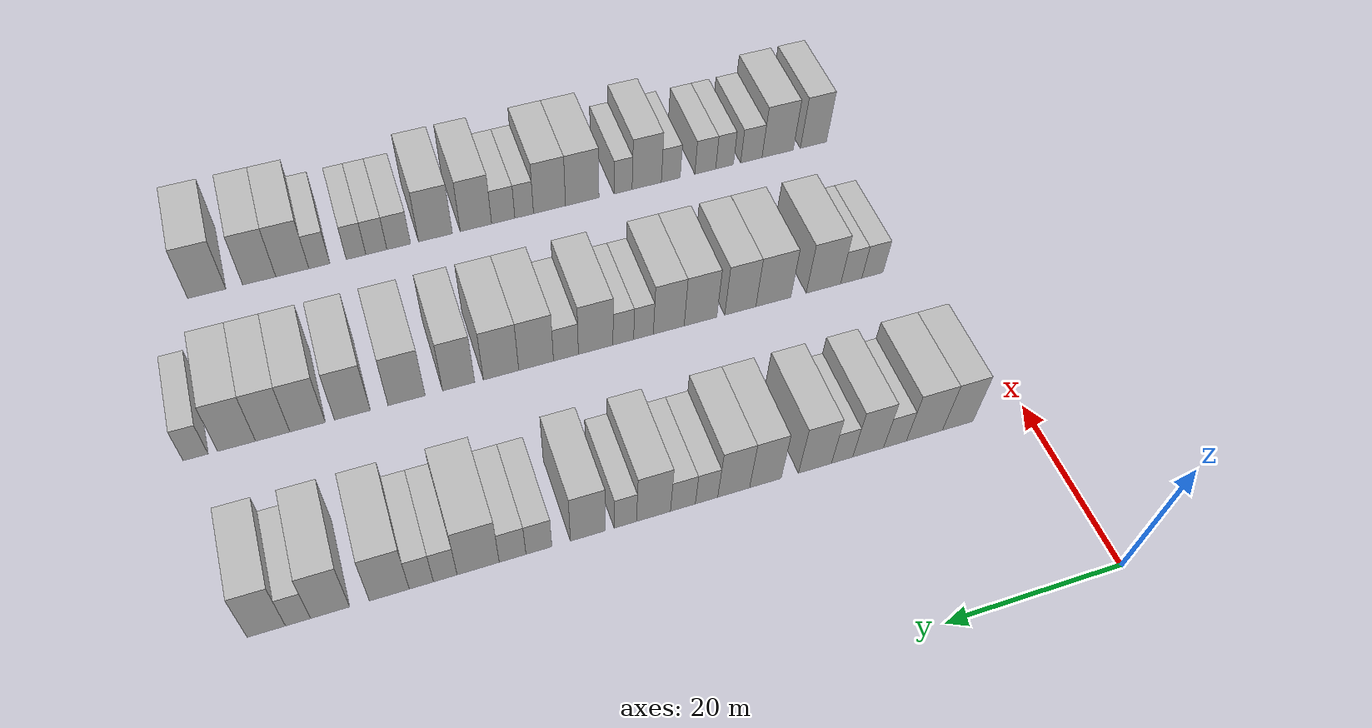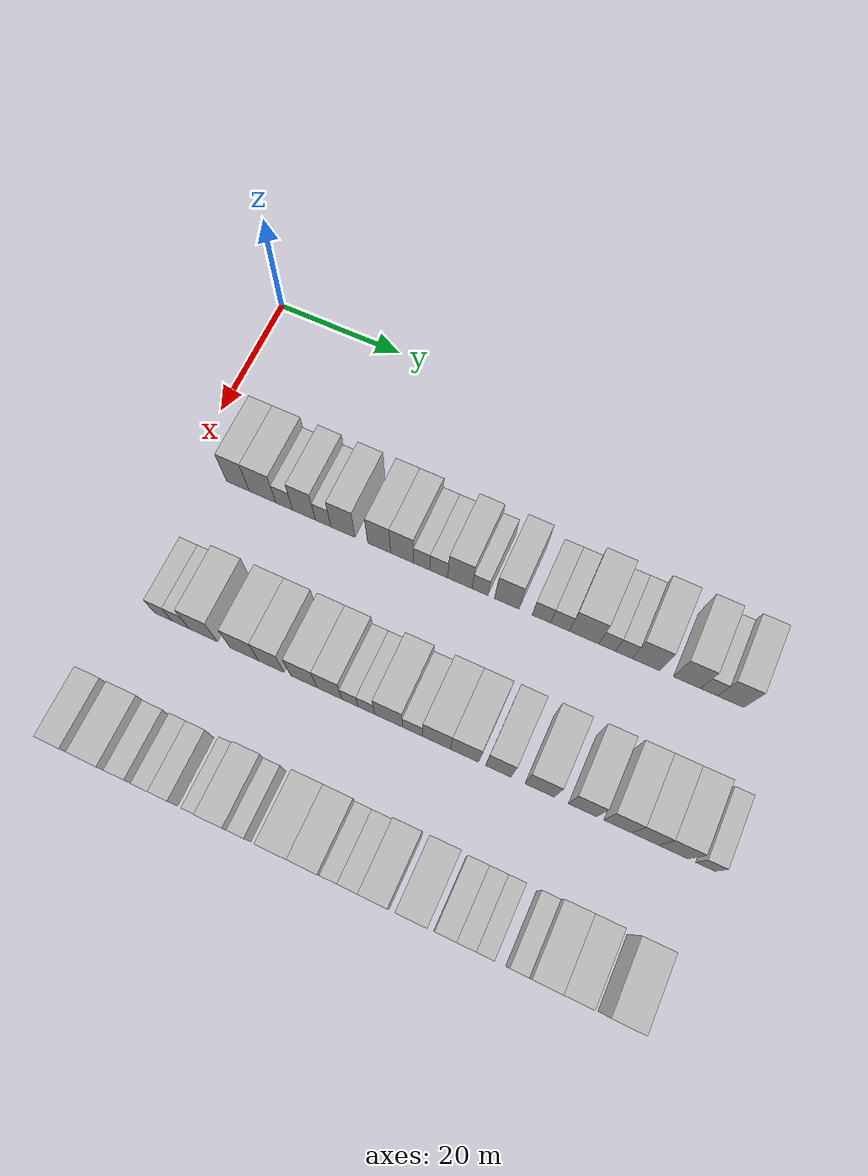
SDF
<sdf version="1.6">
 <world name="default">
  <model name="building_58">
   <static>1</static>
   <pose>25.0000 8.1320 0 0.000000 0.000000 0.000000</pose>
   <link name="link">
    <pose>0 0 4.50 0 0 0</pose>
    <collision name="collision"><geometry><box><size>10.0000 3.7387 9.0000</size></box></geometry></collision>
    <visual name="visual">
     <cast_shadows>0</cast_shadows>
     <geometry><box><size>10.0000 3.7387 9.0000</size></box></geometry>
     <material>
      <script>
       <uri>model://HANNAS_wall/materials/scripts</uri>
       <uri>model://HANNAS_wall/materials/textures</uri>
       <name>vrc/HANNAS_wall</name>
      </script>
     </material>
    </visual>
   </link>
  </model>
  <model name="building_59">
   <static>1</static>
   <pose>25.0000 12.1919 0 0.000000 0.000000 0.000000</pose>
   <link name="link">
    <pose>0 0 4.50 0 0 0</pose>
    <collision name="collision"><geometry><box><size>10.0000 4.3811 9.0000</size></box></geometry></collision>
    <visual name="visual">
     <cast_shadows>0</cast_shadows>
     <geometry><box><size>10.0000 4.3811 9.0000</size></box></geometry>
     <material>
      <script>
       <uri>model://HANNAS_wall/materials/scripts</uri>
       <uri>model://HANNAS_wall/materials/textures</uri>
       <name>vrc/HANNAS_wall</name>
      </script>
     </material>
    </visual>
   </link>
  </model>
  <model name="building_60">
   <static>1</static>
   <pose>25.0000 15.7522 0 0.000000 0.000000 0.000000</pose>
   <link name="link">
    <pose>0 0 3.00 0 0 0</pose>
    <collision name="collision"><geometry><box><size>10.0000 2.7394 6.0000</size></box></geometry></collision>
    <visual name="visual">
     <cast_shadows>0</cast_shadows>
     <geometry><box><size>10.0000 2.7394 6.0000</size></box></geometry>
     <material>
      <script>
       <uri>model://HANNAS_wall/materials/scripts</uri>
       <uri>model://HANNAS_wall/materials/textures</uri>
       <name>vrc/HANNAS_wall</name>
      </script>
     </material>
    </visual>
   </link>
  </model>
  <model name="building_61">
   <static>1</static>
   <pose>25.0000 18.9589 0 0.000000 0.000000 0.000000</pose>
   <link name="link">
    <pose>0 0 4.50 0 0 0</pose>
    <collision name="collision"><geometry><box><size>10.0000 3.6740 9.0000</size></box></geometry></collision>
    <visual name="visual">
     <cast_shadows>0</cast_shadows>
     <geometry><box><size>10.0000 3.6740 9.0000</size></box></geometry>
     <material>
      <script>
       <uri>model://HANNAS_wall/materials/scripts</uri>
       <uri>model://HANNAS_wall/materials/textures</uri>
       <name>vrc/HANNAS_wall</name>
      </script>
     </material>
    </visual>
   </link>
  </model>
  <model name="building_62">
   <static>1</static>
   <pose>25.0000 22.0451 0 0.000000 0.000000 0.000000</pose>
   <link name="link">
    <pose>0 0 3.00 0 0 0</pose>
    <collision name="collision"><geometry><box><size>10.0000 2.4986 6.0000</size></box></geometry></collision>
    <visual name="visual">
     <cast_shadows>0</cast_shadows>
     <geometry><box><size>10.0000 2.4986 6.0000</size></box></geometry>
     <material>
      <script>
       <uri>model://HANNAS_wall/materials/scripts</uri>
       <uri>model://HANNAS_wall/materials/textures</uri>
       <name>vrc/HANNAS_wall</name>
      </script>
     </material>
    </visual>
   </link>
  </model>
  <model name="building_63">
   <static>1</static>
   <pose>25.0000 25.2321 0 0.000000 0.000000 0.000000</pose>
   <link name="link">
    <pose>0 0 4.50 0 0 0</pose>
    <collision name="collision"><geometry><box><size>10.0000 3.8754 9.0000</size></box></geometry></collision>
    <visual name="visual">
     <cast_shadows>0</cast_shadows>
     <geometry><box><size>10.0000 3.8754 9.0000</size></box></geometry>
     <material>
      <script>
       <uri>model://HANNAS_wall/materials/scripts</uri>
       <uri>model://HANNAS_wall/materials/textures</uri>
       <name>vrc/HANNAS_wall</name>
      </script>
     </material>
    </visual>
   </link>
  </model>
  <model name="building_64">
   <static>1</static>
   <pose>25.0000 30.9867 0 0.000000 0.000000 0.000000</pose>
   <link name="link">
    <pose>0 0 4.50 0 0 0</pose>
    <collision name="collision"><geometry><box><size>10.0000 3.6338 9.0000</size></box></geometry></collision>
    <visual name="visual">
     <cast_shadows>0</cast_shadows>
     <geometry><box><size>10.0000 3.6338 9.0000</size></box></geometry>
     <material>
      <script>
       <uri>model://HANNAS_wall/materials/scripts</uri>
       <uri>model://HANNAS_wall/materials/textures</uri>
       <name>vrc/HANNAS_wall</name>
      </script>
     </material>
    </visual>
   </link>
  </model>
  <model name="building_65">
   <static>1</static>
   <pose>25.0000 34.6218 0 0.000000 0.000000 0.000000</pose>
   <link name="link">
    <pose>0 0 4.50 0 0 0</pose>
    <collision name="collision"><geometry><box><size>10.0000 3.6363 9.0000</size></box></geometry></collision>
    <visual name="visual">
     <cast_shadows>0</cast_shadows>
     <geometry><box><size>10.0000 3.6363 9.0000</size></box></geometry>
     <material>
      <script>
       <uri>model://HANNAS_wall/materials/scripts</uri>
       <uri>model://HANNAS_wall/materials/textures</uri>
       <name>vrc/HANNAS_wall</name>
      </script>
     </material>
    </visual>
   </link>
  </model>
  <model name="building_66">
   <static>1</static>
   <pose>25.0000 37.7038 0 0.000000 0.000000 0.000000</pose>
   <link name="link">
    <pose>0 0 3.00 0 0 0</pose>
    <collision name="collision"><geometry><box><size>10.0000 2.5278 6.0000</size></box></geometry></collision>
    <visual name="visual">
     <cast_shadows>0</cast_shadows>
     <geometry><box><size>10.0000 2.5278 6.0000</size></box></geometry>
     <material>
      <script>
       <uri>model://HANNAS_wall/materials/scripts</uri>
       <uri>model://HANNAS_wall/materials/textures</uri>
       <name>vrc/HANNAS_wall</name>
      </script>
     </material>
    </visual>
   </link>
  </model>
  <model name="building_67">
   <static>1</static>
   <pose>25.0000 40.3643 0 0.000000 0.000000 0.000000</pose>
   <link name="link">
    <pose>0 0 3.00 0 0 0</pose>
    <collision name="collision"><geometry><box><size>10.0000 2.7931 6.0000</size></box></geometry></collision>
    <visual name="visual">
     <cast_shadows>0</cast_shadows>
     <geometry><box><size>10.0000 2.7931 6.0000</size></box></geometry>
     <material>
      <script>
       <uri>model://HANNAS_wall/materials/scripts</uri>
       <uri>model://HANNAS_wall/materials/textures</uri>
       <name>vrc/HANNAS_wall</name>
      </script>
     </material>
    </visual>
   </link>
  </model>
  <model name="building_68">
   <static>1</static>
   <pose>25.0000 43.6511 0 0.000000 0.000000 0.000000</pose>
   <link name="link">
    <pose>0 0 4.50 0 0 0</pose>
    <collision name="collision"><geometry><box><size>10.0000 3.7807 9.0000</size></box></geometry></collision>
    <visual name="visual">
     <cast_shadows>0</cast_shadows>
     <geometry><box><size>10.0000 3.7807 9.0000</size></box></geometry>
     <material>
      <script>
       <uri>model://HANNAS_wall/materials/scripts</uri>
       <uri>model://HANNAS_wall/materials/textures</uri>
       <name>vrc/HANNAS_wall</name>
      </script>
     </material>
    </visual>
   </link>
  </model>
  <model name="building_69">
   <static>1</static>
   <pose>25.0000 46.7654 0 0.000000 0.000000 0.000000</pose>
   <link name="link">
    <pose>0 0 3.00 0 0 0</pose>
    <collision name="collision"><geometry><box><size>10.0000 2.4479 6.0000</size></box></geometry></collision>
    <visual name="visual">
     <cast_shadows>0</cast_shadows>
     <geometry><box><size>10.0000 2.4479 6.0000</size></box></geometry>
     <material>
      <script>
       <uri>model://HANNAS_wall/materials/scripts</uri>
       <uri>model://HANNAS_wall/materials/textures</uri>
       <name>vrc/HANNAS_wall</name>
      </script>
     </material>
    </visual>
   </link>
  </model>
  <model name="building_70">
   <static>1</static>
   <pose>25.0000 50.8747 0 0.000000 0.000000 0.000000</pose>
   <link name="link">
    <pose>0 0 4.50 0 0 0</pose>
    <collision name="collision"><geometry><box><size>10.0000 3.7705 9.0000</size></box></geometry></collision>
    <visual name="visual">
     <cast_shadows>0</cast_shadows>
     <geometry><box><size>10.0000 3.7705 9.0000</size></box></geometry>
     <material>
      <script>
       <uri>model://HANNAS_wall/materials/scripts</uri>
       <uri>model://HANNAS_wall/materials/textures</uri>
       <name>vrc/HANNAS_wall</name>
      </script>
     </material>
    </visual>
   </link>
  </model>
  <model name="building_71">
   <static>1</static>
   <pose>25.0000 56.1491 0 0.000000 0.000000 0.000000</pose>
   <link name="link">
    <pose>0 0 3.00 0 0 0</pose>
    <collision name="collision"><geometry><box><size>10.0000 2.7782 6.0000</size></box></geometry></collision>
    <visual name="visual">
     <cast_shadows>0</cast_shadows>
     <geometry><box><size>10.0000 2.7782 6.0000</size></box></geometry>
     <material>
      <script>
       <uri>model://HANNAS_wall/materials/scripts</uri>
       <uri>model://HANNAS_wall/materials/textures</uri>
       <name>vrc/HANNAS_wall</name>
      </script>
     </material>
    </visual>
   </link>
  </model>
  <model name="building_72">
   <static>1</static>
   <pose>25.0000 58.9557 0 0.000000 0.000000 0.000000</pose>
   <link name="link">
    <pose>0 0 3.00 0 0 0</pose>
    <collision name="collision"><geometry><box><size>10.0000 2.8350 6.0000</size></box></geometry></collision>
    <visual name="visual">
     <cast_shadows>0</cast_shadows>
     <geometry><box><size>10.0000 2.8350 6.0000</size></box></geometry>
     <material>
      <script>
       <uri>model://HANNAS_wall/materials/scripts</uri>
       <uri>model://HANNAS_wall/materials/textures</uri>
       <name>vrc/HANNAS_wall</name>
      </script>
     </material>
    </visual>
   </link>
  </model>
  <model name="building_73">
   <static>1</static>
   <pose>25.0000 62.5901 0 0.000000 0.000000 0.000000</pose>
   <link name="link">
    <pose>0 0 4.50 0 0 0</pose>
    <collision name="collision"><geometry><box><size>10.0000 4.4339 9.0000</size></box></geometry></collision>
    <visual name="visual">
     <cast_shadows>0</cast_shadows>
     <geometry><box><size>10.0000 4.4339 9.0000</size></box></geometry>
     <material>
      <script>
       <uri>model://HANNAS_wall/materials/scripts</uri>
       <uri>model://HANNAS_wall/materials/textures</uri>
       <name>vrc/HANNAS_wall</name>
      </script>
     </material>
    </visual>
   </link>
  </model>
  <model name="building_74">
   <static>1</static>
   <pose>25.0000 66.0363 0 0.000000 0.000000 0.000000</pose>
   <link name="link">
    <pose>0 0 3.00 0 0 0</pose>
    <collision name="collision"><geometry><box><size>10.0000 2.4584 6.0000</size></box></geometry></collision>
    <visual name="visual">
     <cast_shadows>0</cast_shadows>
     <geometry><box><size>10.0000 2.4584 6.0000</size></box></geometry>
     <material>
      <script>
       <uri>model://HANNAS_wall/materials/scripts</uri>
       <uri>model://HANNAS_wall/materials/textures</uri>
       <name>vrc/HANNAS_wall</name>
      </script>
     </material>
    </visual>
   </link>
  </model>
  <model name="building_75">
   <static>1</static>
   <pose>25.0000 68.5160 0 0.000000 0.000000 0.000000</pose>
   <link name="link">
    <pose>0 0 3.00 0 0 0</pose>
    <collision name="collision"><geometry><box><size>10.0000 2.5010 6.0000</size></box></geometry></collision>
    <visual name="visual">
     <cast_shadows>0</cast_shadows>
     <geometry><box><size>10.0000 2.5010 6.0000</size></box></geometry>
     <material>
      <script>
       <uri>model://HANNAS_wall/materials/scripts</uri>
       <uri>model://HANNAS_wall/materials/textures</uri>
       <name>vrc/HANNAS_wall</name>
      </script>
     </material>
    </visual>
   </link>
  </model>
  <model name="building_76">
   <static>1</static>
   <pose>25.0000 71.8077 0 0.000000 0.000000 0.000000</pose>
   <link name="link">
    <pose>0 0 4.50 0 0 0</pose>
    <collision name="collision"><geometry><box><size>10.0000 4.0823 9.0000</size></box></geometry></collision>
    <visual name="visual">
     <cast_shadows>0</cast_shadows>
     <geometry><box><size>10.0000 4.0823 9.0000</size></box></geometry>
     <material>
      <script>
       <uri>model://HANNAS_wall/materials/scripts</uri>
       <uri>model://HANNAS_wall/materials/textures</uri>
       <name>vrc/HANNAS_wall</name>
      </script>
     </material>
    </visual>
   </link>
  </model>
  <model name="building_77">
   <static>1</static>
   <pose>25.0000 77.8161 0 0.000000 0.000000 0.000000</pose>
   <link name="link">
    <pose>0 0 4.50 0 0 0</pose>
    <collision name="collision"><geometry><box><size>10.0000 3.9346 9.0000</size></box></geometry></collision>
    <visual name="visual">
     <cast_shadows>0</cast_shadows>
     <geometry><box><size>10.0000 3.9346 9.0000</size></box></geometry>
     <material>
      <script>
       <uri>model://HANNAS_wall/materials/scripts</uri>
       <uri>model://HANNAS_wall/materials/textures</uri>
       <name>vrc/HANNAS_wall</name>
      </script>
     </material>
    </visual>
   </link>
  </model>
  <model name="building_78">
   <static>1</static>
   <pose>25.0000 81.0321 0 0.000000 0.000000 0.000000</pose>
   <link name="link">
    <pose>0 0 3.00 0 0 0</pose>
    <collision name="collision"><geometry><box><size>10.0000 2.4973 6.0000</size></box></geometry></collision>
    <visual name="visual">
     <cast_shadows>0</cast_shadows>
     <geometry><box><size>10.0000 2.4973 6.0000</size></box></geometry>
     <material>
      <script>
       <uri>model://HANNAS_wall/materials/scripts</uri>
       <uri>model://HANNAS_wall/materials/textures</uri>
       <name>vrc/HANNAS_wall</name>
      </script>
     </material>
    </visual>
   </link>
  </model>
  <model name="building_79">
   <static>1</static>
   <pose>25.0000 84.1722 0 0.000000 0.000000 0.000000</pose>
   <link name="link">
    <pose>0 0 4.50 0 0 0</pose>
    <collision name="collision"><geometry><box><size>10.0000 3.7828 9.0000</size></box></geometry></collision>
    <visual name="visual">
     <cast_shadows>0</cast_shadows>
     <geometry><box><size>10.0000 3.7828 9.0000</size></box></geometry>
     <material>
      <script>
       <uri>model://HANNAS_wall/materials/scripts</uri>
       <uri>model://HANNAS_wall/materials/textures</uri>
       <name>vrc/HANNAS_wall</name>
      </script>
     </material>
    </visual>
   </link>
  </model>
  <model name="building_186">
   <static>1</static>
   <pose>47.0000 8.0181 0 0.000000 0.000000 0.000000</pose>
   <link name="link">
    <pose>0 0 3.00 0 0 0</pose>
    <collision name="collision"><geometry><box><size>10.0000 2.7913 6.0000</size></box></geometry></collision>
    <visual name="visual">
     <cast_shadows>0</cast_shadows>
     <geometry><box><size>10.0000 2.7913 6.0000</size></box></geometry>
     <material>
      <script>
       <uri>model://HANNAS_wall/materials/scripts</uri>
       <uri>model://HANNAS_wall/materials/textures</uri>
       <name>vrc/HANNAS_wall</name>
      </script>
     </material>
    </visual>
   </link>
  </model>
  <model name="building_187">
   <static>1</static>
   <pose>47.0000 10.8010 0 0.000000 0.000000 0.000000</pose>
   <link name="link">
    <pose>0 0 3.00 0 0 0</pose>
    <collision name="collision"><geometry><box><size>10.0000 2.7745 6.0000</size></box></geometry></collision>
    <visual name="visual">
     <cast_shadows>0</cast_shadows>
     <geometry><box><size>10.0000 2.7745 6.0000</size></box></geometry>
     <material>
      <script>
       <uri>model://HANNAS_wall/materials/scripts</uri>
       <uri>model://HANNAS_wall/materials/textures</uri>
       <name>vrc/HANNAS_wall</name>
      </script>
     </material>
    </visual>
   </link>
  </model>
  <model name="building_188">
   <static>1</static>
   <pose>47.0000 14.4254 0 0.000000 0.000000 0.000000</pose>
   <link name="link">
    <pose>0 0 4.50 0 0 0</pose>
    <collision name="collision"><geometry><box><size>10.0000 4.4743 9.0000</size></box></geometry></collision>
    <visual name="visual">
     <cast_shadows>0</cast_shadows>
     <geometry><box><size>10.0000 4.4743 9.0000</size></box></geometry>
     <material>
      <script>
       <uri>model://HANNAS_wall/materials/scripts</uri>
       <uri>model://HANNAS_wall/materials/textures</uri>
       <name>vrc/HANNAS_wall</name>
      </script>
     </material>
    </visual>
   </link>
  </model>
  <model name="building_189">
   <static>1</static>
   <pose>47.0000 20.8934 0 0.000000 0.000000 0.000000</pose>
   <link name="link">
    <pose>0 0 4.50 0 0 0</pose>
    <collision name="collision"><geometry><box><size>10.0000 4.4619 9.0000</size></box></geometry></collision>
    <visual name="visual">
     <cast_shadows>0</cast_shadows>
     <geometry><box><size>10.0000 4.4619 9.0000</size></box></geometry>
     <material>
      <script>
       <uri>model://HANNAS_wall/materials/scripts</uri>
       <uri>model://HANNAS_wall/materials/textures</uri>
       <name>vrc/HANNAS_wall</name>
      </script>
     </material>
    </visual>
   </link>
  </model>
  <model name="building_190">
   <static>1</static>
   <pose>47.0000 25.0932 0 0.000000 0.000000 0.000000</pose>
   <link name="link">
    <pose>0 0 4.50 0 0 0</pose>
    <collision name="collision"><geometry><box><size>10.0000 3.9375 9.0000</size></box></geometry></collision>
    <visual name="visual">
     <cast_shadows>0</cast_shadows>
     <geometry><box><size>10.0000 3.9375 9.0000</size></box></geometry>
     <material>
      <script>
       <uri>model://HANNAS_wall/materials/scripts</uri>
       <uri>model://HANNAS_wall/materials/textures</uri>
       <name>vrc/HANNAS_wall</name>
      </script>
     </material>
    </visual>
   </link>
  </model>
  <model name="building_191">
   <static>1</static>
   <pose>47.0000 30.0962 0 0.000000 0.000000 0.000000</pose>
   <link name="link">
    <pose>0 0 4.50 0 0 0</pose>
    <collision name="collision"><geometry><box><size>10.0000 4.0685 9.0000</size></box></geometry></collision>
    <visual name="visual">
     <cast_shadows>0</cast_shadows>
     <geometry><box><size>10.0000 4.0685 9.0000</size></box></geometry>
     <material>
      <script>
       <uri>model://HANNAS_wall/materials/scripts</uri>
       <uri>model://HANNAS_wall/materials/textures</uri>
       <name>vrc/HANNAS_wall</name>
      </script>
     </material>
    </visual>
   </link>
  </model>
  <model name="building_192">
   <static>1</static>
   <pose>47.0000 34.0385 0 0.000000 0.000000 0.000000</pose>
   <link name="link">
    <pose>0 0 4.50 0 0 0</pose>
    <collision name="collision"><geometry><box><size>10.0000 3.8162 9.0000</size></box></geometry></collision>
    <visual name="visual">
     <cast_shadows>0</cast_shadows>
     <geometry><box><size>10.0000 3.8162 9.0000</size></box></geometry>
     <material>
      <script>
       <uri>model://HANNAS_wall/materials/scripts</uri>
       <uri>model://HANNAS_wall/materials/textures</uri>
       <name>vrc/HANNAS_wall</name>
      </script>
     </material>
    </visual>
   </link>
  </model>
  <model name="building_193">
   <static>1</static>
   <pose>47.0000 37.1531 0 0.000000 0.000000 0.000000</pose>
   <link name="link">
    <pose>0 0 3.00 0 0 0</pose>
    <collision name="collision"><geometry><box><size>10.0000 2.4130 6.0000</size></box></geometry></collision>
    <visual name="visual">
     <cast_shadows>0</cast_shadows>
     <geometry><box><size>10.0000 2.4130 6.0000</size></box></geometry>
     <material>
      <script>
       <uri>model://HANNAS_wall/materials/scripts</uri>
       <uri>model://HANNAS_wall/materials/textures</uri>
       <name>vrc/HANNAS_wall</name>
      </script>
     </material>
    </visual>
   </link>
  </model>
  <model name="building_194">
   <static>1</static>
   <pose>47.0000 39.6184 0 0.000000 0.000000 0.000000</pose>
   <link name="link">
    <pose>0 0 3.00 0 0 0</pose>
    <collision name="collision"><geometry><box><size>10.0000 2.5175 6.0000</size></box></geometry></collision>
    <visual name="visual">
     <cast_shadows>0</cast_shadows>
     <geometry><box><size>10.0000 2.5175 6.0000</size></box></geometry>
     <material>
      <script>
       <uri>model://HANNAS_wall/materials/scripts</uri>
       <uri>model://HANNAS_wall/materials/textures</uri>
       <name>vrc/HANNAS_wall</name>
      </script>
     </material>
    </visual>
   </link>
  </model>
  <model name="building_195">
   <static>1</static>
   <pose>47.0000 42.9629 0 0.000000 0.000000 0.000000</pose>
   <link name="link">
    <pose>0 0 4.50 0 0 0</pose>
    <collision name="collision"><geometry><box><size>10.0000 4.1716 9.0000</size></box></geometry></collision>
    <visual name="visual">
     <cast_shadows>0</cast_shadows>
     <geometry><box><size>10.0000 4.1716 9.0000</size></box></geometry>
     <material>
      <script>
       <uri>model://HANNAS_wall/materials/scripts</uri>
       <uri>model://HANNAS_wall/materials/textures</uri>
       <name>vrc/HANNAS_wall</name>
      </script>
     </material>
    </visual>
   </link>
  </model>
  <model name="building_196">
   <static>1</static>
   <pose>47.0000 46.5400 0 0.000000 0.000000 0.000000</pose>
   <link name="link">
    <pose>0 0 3.00 0 0 0</pose>
    <collision name="collision"><geometry><box><size>10.0000 2.9826 6.0000</size></box></geometry></collision>
    <visual name="visual">
     <cast_shadows>0</cast_shadows>
     <geometry><box><size>10.0000 2.9826 6.0000</size></box></geometry>
     <material>
      <script>
       <uri>model://HANNAS_wall/materials/scripts</uri>
       <uri>model://HANNAS_wall/materials/textures</uri>
       <name>vrc/HANNAS_wall</name>
      </script>
     </material>
    </visual>
   </link>
  </model>
  <model name="building_197">
   <static>1</static>
   <pose>47.0000 50.0915 0 0.000000 0.000000 0.000000</pose>
   <link name="link">
    <pose>0 0 4.50 0 0 0</pose>
    <collision name="collision"><geometry><box><size>10.0000 4.1204 9.0000</size></box></geometry></collision>
    <visual name="visual">
     <cast_shadows>0</cast_shadows>
     <geometry><box><size>10.0000 4.1204 9.0000</size></box></geometry>
     <material>
      <script>
       <uri>model://HANNAS_wall/materials/scripts</uri>
       <uri>model://HANNAS_wall/materials/textures</uri>
       <name>vrc/HANNAS_wall</name>
      </script>
     </material>
    </visual>
   </link>
  </model>
  <model name="building_198">
   <static>1</static>
   <pose>47.0000 54.2253 0 0.000000 0.000000 0.000000</pose>
   <link name="link">
    <pose>0 0 4.50 0 0 0</pose>
    <collision name="collision"><geometry><box><size>10.0000 4.1473 9.0000</size></box></geometry></collision>
    <visual name="visual">
     <cast_shadows>0</cast_shadows>
     <geometry><box><size>10.0000 4.1473 9.0000</size></box></geometry>
     <material>
      <script>
       <uri>model://HANNAS_wall/materials/scripts</uri>
       <uri>model://HANNAS_wall/materials/textures</uri>
       <name>vrc/HANNAS_wall</name>
      </script>
     </material>
    </visual>
   </link>
  </model>
  <model name="building_199">
   <static>1</static>
   <pose>47.0000 59.1625 0 0.000000 0.000000 0.000000</pose>
   <link name="link">
    <pose>0 0 4.50 0 0 0</pose>
    <collision name="collision"><geometry><box><size>10.0000 3.7270 9.0000</size></box></geometry></collision>
    <visual name="visual">
     <cast_shadows>0</cast_shadows>
     <geometry><box><size>10.0000 3.7270 9.0000</size></box></geometry>
     <material>
      <script>
       <uri>model://HANNAS_wall/materials/scripts</uri>
       <uri>model://HANNAS_wall/materials/textures</uri>
       <name>vrc/HANNAS_wall</name>
      </script>
     </material>
    </visual>
   </link>
  </model>
  <model name="building_200">
   <static>1</static>
   <pose>47.0000 65.1436 0 0.000000 0.000000 0.000000</pose>
   <link name="link">
    <pose>0 0 4.50 0 0 0</pose>
    <collision name="collision"><geometry><box><size>10.0000 4.2352 9.0000</size></box></geometry></collision>
    <visual name="visual">
     <cast_shadows>0</cast_shadows>
     <geometry><box><size>10.0000 4.2352 9.0000</size></box></geometry>
     <material>
      <script>
       <uri>model://HANNAS_wall/materials/scripts</uri>
       <uri>model://HANNAS_wall/materials/textures</uri>
       <name>vrc/HANNAS_wall</name>
      </script>
     </material>
    </visual>
   </link>
  </model>
  <model name="building_201">
   <static>1</static>
   <pose>47.0000 71.2750 0 0.000000 0.000000 0.000000</pose>
   <link name="link">
    <pose>0 0 4.50 0 0 0</pose>
    <collision name="collision"><geometry><box><size>10.0000 4.0276 9.0000</size></box></geometry></collision>
    <visual name="visual">
     <cast_shadows>0</cast_shadows>
     <geometry><box><size>10.0000 4.0276 9.0000</size></box></geometry>
     <material>
      <script>
       <uri>model://HANNAS_wall/materials/scripts</uri>
       <uri>model://HANNAS_wall/materials/textures</uri>
       <name>vrc/HANNAS_wall</name>
      </script>
     </material>
    </visual>
   </link>
  </model>
  <model name="building_202">
   <static>1</static>
   <pose>47.0000 76.2498 0 0.000000 0.000000 0.000000</pose>
   <link name="link">
    <pose>0 0 4.50 0 0 0</pose>
    <collision name="collision"><geometry><box><size>10.0000 3.9221 9.0000</size></box></geometry></collision>
    <visual name="visual">
     <cast_shadows>0</cast_shadows>
     <geometry><box><size>10.0000 3.9221 9.0000</size></box></geometry>
     <material>
      <script>
       <uri>model://HANNAS_wall/materials/scripts</uri>
       <uri>model://HANNAS_wall/materials/textures</uri>
       <name>vrc/HANNAS_wall</name>
      </script>
     </material>
    </visual>
   </link>
  </model>
  <model name="building_203">
   <static>1</static>
   <pose>47.0000 80.0890 0 0.000000 0.000000 0.000000</pose>
   <link name="link">
    <pose>0 0 4.50 0 0 0</pose>
    <collision name="collision"><geometry><box><size>10.0000 3.7563 9.0000</size></box></geometry></collision>
    <visual name="visual">
     <cast_shadows>0</cast_shadows>
     <geometry><box><size>10.0000 3.7563 9.0000</size></box></geometry>
     <material>
      <script>
       <uri>model://HANNAS_wall/materials/scripts</uri>
       <uri>model://HANNAS_wall/materials/textures</uri>
       <name>vrc/HANNAS_wall</name>
      </script>
     </material>
    </visual>
   </link>
  </model>
  <model name="building_204">
   <static>1</static>
   <pose>47.0000 84.0319 0 0.000000 0.000000 0.000000</pose>
   <link name="link">
    <pose>0 0 4.50 0 0 0</pose>
    <collision name="collision"><geometry><box><size>10.0000 4.1295 9.0000</size></box></geometry></collision>
    <visual name="visual">
     <cast_shadows>0</cast_shadows>
     <geometry><box><size>10.0000 4.1295 9.0000</size></box></geometry>
     <material>
      <script>
       <uri>model://HANNAS_wall/materials/scripts</uri>
       <uri>model://HANNAS_wall/materials/textures</uri>
       <name>vrc/HANNAS_wall</name>
      </script>
     </material>
    </visual>
   </link>
  </model>
  <model name="building_205">
   <static>1</static>
   <pose>47.0000 88.4395 0 0.000000 0.000000 0.000000</pose>
   <link name="link">
    <pose>0 0 3.00 0 0 0</pose>
    <collision name="collision"><geometry><box><size>10.0000 2.6857 6.0000</size></box></geometry></collision>
    <visual name="visual">
     <cast_shadows>0</cast_shadows>
     <geometry><box><size>10.0000 2.6857 6.0000</size></box></geometry>
     <material>
      <script>
       <uri>model://HANNAS_wall/materials/scripts</uri>
       <uri>model://HANNAS_wall/materials/textures</uri>
       <name>vrc/HANNAS_wall</name>
      </script>
     </material>
    </visual>
   </link>
  </model>
  <model name="building_315">
   <static>1</static>
   <pose>69.0000 6.0503 0 0.000000 0.000000 0.000000</pose>
   <link name="link">
    <pose>0 0 4.50 0 0 0</pose>
    <collision name="collision"><geometry><box><size>10.0000 3.7075 9.0000</size></box></geometry></collision>
    <visual name="visual">
     <cast_shadows>0</cast_shadows>
     <geometry><box><size>10.0000 3.7075 9.0000</size></box></geometry>
     <material>
      <script>
       <uri>model://HANNAS_wall/materials/scripts</uri>
       <uri>model://HANNAS_wall/materials/textures</uri>
       <name>vrc/HANNAS_wall</name>
      </script>
     </material>
    </visual>
   </link>
  </model>
  <model name="building_316">
   <static>1</static>
   <pose>69.0000 11.0996 0 0.000000 0.000000 0.000000</pose>
   <link name="link">
    <pose>0 0 4.50 0 0 0</pose>
    <collision name="collision"><geometry><box><size>10.0000 4.3912 9.0000</size></box></geometry></collision>
    <visual name="visual">
     <cast_shadows>0</cast_shadows>
     <geometry><box><size>10.0000 4.3912 9.0000</size></box></geometry>
     <material>
      <script>
       <uri>model://HANNAS_wall/materials/scripts</uri>
       <uri>model://HANNAS_wall/materials/textures</uri>
       <name>vrc/HANNAS_wall</name>
      </script>
     </material>
    </visual>
   </link>
  </model>
  <model name="building_317">
   <static>1</static>
   <pose>69.0000 14.7841 0 0.000000 0.000000 0.000000</pose>
   <link name="link">
    <pose>0 0 3.00 0 0 0</pose>
    <collision name="collision"><geometry><box><size>10.0000 2.9777 6.0000</size></box></geometry></collision>
    <visual name="visual">
     <cast_shadows>0</cast_shadows>
     <geometry><box><size>10.0000 2.9777 6.0000</size></box></geometry>
     <material>
      <script>
       <uri>model://HANNAS_wall/materials/scripts</uri>
       <uri>model://HANNAS_wall/materials/textures</uri>
       <name>vrc/HANNAS_wall</name>
      </script>
     </material>
    </visual>
   </link>
  </model>
  <model name="building_318">
   <static>1</static>
   <pose>69.0000 18.4942 0 0.000000 0.000000 0.000000</pose>
   <link name="link">
    <pose>0 0 3.00 0 0 0</pose>
    <collision name="collision"><geometry><box><size>10.0000 2.4425 6.0000</size></box></geometry></collision>
    <visual name="visual">
     <cast_shadows>0</cast_shadows>
     <geometry><box><size>10.0000 2.4425 6.0000</size></box></geometry>
     <material>
      <script>
       <uri>model://HANNAS_wall/materials/scripts</uri>
       <uri>model://HANNAS_wall/materials/textures</uri>
       <name>vrc/HANNAS_wall</name>
      </script>
     </material>
    </visual>
   </link>
  </model>
  <model name="building_319">
   <static>1</static>
   <pose>69.0000 21.1465 0 0.000000 0.000000 0.000000</pose>
   <link name="link">
    <pose>0 0 3.00 0 0 0</pose>
    <collision name="collision"><geometry><box><size>10.0000 2.8621 6.0000</size></box></geometry></collision>
    <visual name="visual">
     <cast_shadows>0</cast_shadows>
     <geometry><box><size>10.0000 2.8621 6.0000</size></box></geometry>
     <material>
      <script>
       <uri>model://HANNAS_wall/materials/scripts</uri>
       <uri>model://HANNAS_wall/materials/textures</uri>
       <name>vrc/HANNAS_wall</name>
      </script>
     </material>
    </visual>
   </link>
  </model>
  <model name="building_320">
   <static>1</static>
   <pose>69.0000 25.8572 0 0.000000 0.000000 0.000000</pose>
   <link name="link">
    <pose>0 0 3.00 0 0 0</pose>
    <collision name="collision"><geometry><box><size>10.0000 2.5592 6.0000</size></box></geometry></collision>
    <visual name="visual">
     <cast_shadows>0</cast_shadows>
     <geometry><box><size>10.0000 2.5592 6.0000</size></box></geometry>
     <material>
      <script>
       <uri>model://HANNAS_wall/materials/scripts</uri>
       <uri>model://HANNAS_wall/materials/textures</uri>
       <name>vrc/HANNAS_wall</name>
      </script>
     </material>
    </visual>
   </link>
  </model>
  <model name="building_321">
   <static>1</static>
   <pose>69.0000 29.1063 0 0.000000 0.000000 0.000000</pose>
   <link name="link">
    <pose>0 0 4.50 0 0 0</pose>
    <collision name="collision"><geometry><box><size>10.0000 3.9389 9.0000</size></box></geometry></collision>
    <visual name="visual">
     <cast_shadows>0</cast_shadows>
     <geometry><box><size>10.0000 3.9389 9.0000</size></box></geometry>
     <material>
      <script>
       <uri>model://HANNAS_wall/materials/scripts</uri>
       <uri>model://HANNAS_wall/materials/textures</uri>
       <name>vrc/HANNAS_wall</name>
      </script>
     </material>
    </visual>
   </link>
  </model>
  <model name="building_322">
   <static>1</static>
   <pose>69.0000 32.2846 0 0.000000 0.000000 0.000000</pose>
   <link name="link">
    <pose>0 0 3.00 0 0 0</pose>
    <collision name="collision"><geometry><box><size>10.0000 2.4178 6.0000</size></box></geometry></collision>
    <visual name="visual">
     <cast_shadows>0</cast_shadows>
     <geometry><box><size>10.0000 2.4178 6.0000</size></box></geometry>
     <material>
      <script>
       <uri>model://HANNAS_wall/materials/scripts</uri>
       <uri>model://HANNAS_wall/materials/textures</uri>
       <name>vrc/HANNAS_wall</name>
      </script>
     </material>
    </visual>
   </link>
  </model>
  <model name="building_323">
   <static>1</static>
   <pose>69.0000 37.6984 0 0.000000 0.000000 0.000000</pose>
   <link name="link">
    <pose>0 0 4.50 0 0 0</pose>
    <collision name="collision"><geometry><box><size>10.0000 4.4097 9.0000</size></box></geometry></collision>
    <visual name="visual">
     <cast_shadows>0</cast_shadows>
     <geometry><box><size>10.0000 4.4097 9.0000</size></box></geometry>
     <material>
      <script>
       <uri>model://HANNAS_wall/materials/scripts</uri>
       <uri>model://HANNAS_wall/materials/textures</uri>
       <name>vrc/HANNAS_wall</name>
      </script>
     </material>
    </visual>
   </link>
  </model>
  <model name="building_324">
   <static>1</static>
   <pose>69.0000 41.9946 0 0.000000 0.000000 0.000000</pose>
   <link name="link">
    <pose>0 0 4.50 0 0 0</pose>
    <collision name="collision"><geometry><box><size>10.0000 4.1827 9.0000</size></box></geometry></collision>
    <visual name="visual">
     <cast_shadows>0</cast_shadows>
     <geometry><box><size>10.0000 4.1827 9.0000</size></box></geometry>
     <material>
      <script>
       <uri>model://HANNAS_wall/materials/scripts</uri>
       <uri>model://HANNAS_wall/materials/textures</uri>
       <name>vrc/HANNAS_wall</name>
      </script>
     </material>
    </visual>
   </link>
  </model>
  <model name="building_325">
   <static>1</static>
   <pose>69.0000 45.2927 0 0.000000 0.000000 0.000000</pose>
   <link name="link">
    <pose>0 0 3.00 0 0 0</pose>
    <collision name="collision"><geometry><box><size>10.0000 2.4135 6.0000</size></box></geometry></collision>
    <visual name="visual">
     <cast_shadows>0</cast_shadows>
     <geometry><box><size>10.0000 2.4135 6.0000</size></box></geometry>
     <material>
      <script>
       <uri>model://HANNAS_wall/materials/scripts</uri>
       <uri>model://HANNAS_wall/materials/textures</uri>
       <name>vrc/HANNAS_wall</name>
      </script>
     </material>
    </visual>
   </link>
  </model>
  <model name="building_326">
   <static>1</static>
   <pose>69.0000 47.9953 0 0.000000 0.000000 0.000000</pose>
   <link name="link">
    <pose>0 0 3.00 0 0 0</pose>
    <collision name="collision"><geometry><box><size>10.0000 2.9918 6.0000</size></box></geometry></collision>
    <visual name="visual">
     <cast_shadows>0</cast_shadows>
     <geometry><box><size>10.0000 2.9918 6.0000</size></box></geometry>
     <material>
      <script>
       <uri>model://HANNAS_wall/materials/scripts</uri>
       <uri>model://HANNAS_wall/materials/textures</uri>
       <name>vrc/HANNAS_wall</name>
      </script>
     </material>
    </visual>
   </link>
  </model>
  <model name="building_327">
   <static>1</static>
   <pose>69.0000 51.4941 0 0.000000 0.000000 0.000000</pose>
   <link name="link">
    <pose>0 0 4.50 0 0 0</pose>
    <collision name="collision"><geometry><box><size>10.0000 4.0058 9.0000</size></box></geometry></collision>
    <visual name="visual">
     <cast_shadows>0</cast_shadows>
     <geometry><box><size>10.0000 4.0058 9.0000</size></box></geometry>
     <material>
      <script>
       <uri>model://HANNAS_wall/materials/scripts</uri>
       <uri>model://HANNAS_wall/materials/textures</uri>
       <name>vrc/HANNAS_wall</name>
      </script>
     </material>
    </visual>
   </link>
  </model>
  <model name="building_328">
   <static>1</static>
   <pose>69.0000 56.6318 0 0.000000 0.000000 0.000000</pose>
   <link name="link">
    <pose>0 0 4.50 0 0 0</pose>
    <collision name="collision"><geometry><box><size>10.0000 4.2696 9.0000</size></box></geometry></collision>
    <visual name="visual">
     <cast_shadows>0</cast_shadows>
     <geometry><box><size>10.0000 4.2696 9.0000</size></box></geometry>
     <material>
      <script>
       <uri>model://HANNAS_wall/materials/scripts</uri>
       <uri>model://HANNAS_wall/materials/textures</uri>
       <name>vrc/HANNAS_wall</name>
      </script>
     </material>
    </visual>
   </link>
  </model>
  <model name="building_329">
   <static>1</static>
   <pose>69.0000 61.2412 0 0.000000 0.000000 0.000000</pose>
   <link name="link">
    <pose>0 0 3.00 0 0 0</pose>
    <collision name="collision"><geometry><box><size>10.0000 2.9491 6.0000</size></box></geometry></collision>
    <visual name="visual">
     <cast_shadows>0</cast_shadows>
     <geometry><box><size>10.0000 2.9491 6.0000</size></box></geometry>
     <material>
      <script>
       <uri>model://HANNAS_wall/materials/scripts</uri>
       <uri>model://HANNAS_wall/materials/textures</uri>
       <name>vrc/HANNAS_wall</name>
      </script>
     </material>
    </visual>
   </link>
  </model>
  <model name="building_330">
   <static>1</static>
   <pose>69.0000 64.0169 0 0.000000 0.000000 0.000000</pose>
   <link name="link">
    <pose>0 0 3.00 0 0 0</pose>
    <collision name="collision"><geometry><box><size>10.0000 2.6024 6.0000</size></box></geometry></collision>
    <visual name="visual">
     <cast_shadows>0</cast_shadows>
     <geometry><box><size>10.0000 2.6024 6.0000</size></box></geometry>
     <material>
      <script>
       <uri>model://HANNAS_wall/materials/scripts</uri>
       <uri>model://HANNAS_wall/materials/textures</uri>
       <name>vrc/HANNAS_wall</name>
      </script>
     </material>
    </visual>
   </link>
  </model>
  <model name="building_331">
   <static>1</static>
   <pose>69.0000 66.5277 0 0.000000 0.000000 0.000000</pose>
   <link name="link">
    <pose>0 0 3.00 0 0 0</pose>
    <collision name="collision"><geometry><box><size>10.0000 2.4192 6.0000</size></box></geometry></collision>
    <visual name="visual">
     <cast_shadows>0</cast_shadows>
     <geometry><box><size>10.0000 2.4192 6.0000</size></box></geometry>
     <material>
      <script>
       <uri>model://HANNAS_wall/materials/scripts</uri>
       <uri>model://HANNAS_wall/materials/textures</uri>
       <name>vrc/HANNAS_wall</name>
      </script>
     </material>
    </visual>
   </link>
  </model>
  <model name="building_332">
   <static>1</static>
   <pose>69.0000 71.0183 0 0.000000 0.000000 0.000000</pose>
   <link name="link">
    <pose>0 0 3.00 0 0 0</pose>
    <collision name="collision"><geometry><box><size>10.0000 2.5619 6.0000</size></box></geometry></collision>
    <visual name="visual">
     <cast_shadows>0</cast_shadows>
     <geometry><box><size>10.0000 2.5619 6.0000</size></box></geometry>
     <material>
      <script>
       <uri>model://HANNAS_wall/materials/scripts</uri>
       <uri>model://HANNAS_wall/materials/textures</uri>
       <name>vrc/HANNAS_wall</name>
      </script>
     </material>
    </visual>
   </link>
  </model>
  <model name="building_333">
   <static>1</static>
   <pose>69.0000 74.2972 0 0.000000 0.000000 0.000000</pose>
   <link name="link">
    <pose>0 0 4.50 0 0 0</pose>
    <collision name="collision"><geometry><box><size>10.0000 3.9959 9.0000</size></box></geometry></collision>
    <visual name="visual">
     <cast_shadows>0</cast_shadows>
     <geometry><box><size>10.0000 3.9959 9.0000</size></box></geometry>
     <material>
      <script>
       <uri>model://HANNAS_wall/materials/scripts</uri>
       <uri>model://HANNAS_wall/materials/textures</uri>
       <name>vrc/HANNAS_wall</name>
      </script>
     </material>
    </visual>
   </link>
  </model>
  <model name="building_334">
   <static>1</static>
   <pose>69.0000 78.2757 0 0.000000 0.000000 0.000000</pose>
   <link name="link">
    <pose>0 0 4.50 0 0 0</pose>
    <collision name="collision"><geometry><box><size>10.0000 3.9612 9.0000</size></box></geometry></collision>
    <visual name="visual">
     <cast_shadows>0</cast_shadows>
     <geometry><box><size>10.0000 3.9612 9.0000</size></box></geometry>
     <material>
      <script>
       <uri>model://HANNAS_wall/materials/scripts</uri>
       <uri>model://HANNAS_wall/materials/textures</uri>
       <name>vrc/HANNAS_wall</name>
      </script>
     </material>
    </visual>
   </link>
  </model>
  <model name="building_335">
   <static>1</static>
   <pose>69.0000 84.5030 0 0.000000 0.000000 0.000000</pose>
   <link name="link">
    <pose>0 0 4.50 0 0 0</pose>
    <collision name="collision"><geometry><box><size>10.0000 4.4933 9.0000</size></box></geometry></collision>
    <visual name="visual">
     <cast_shadows>0</cast_shadows>
     <geometry><box><size>10.0000 4.4933 9.0000</size></box></geometry>
     <material>
      <script>
       <uri>model://HANNAS_wall/materials/scripts</uri>
       <uri>model://HANNAS_wall/materials/textures</uri>
       <name>vrc/HANNAS_wall</name>
      </script>
     </material>
    </visual>
   </link>
  </model>
 </world>
</sdf>
